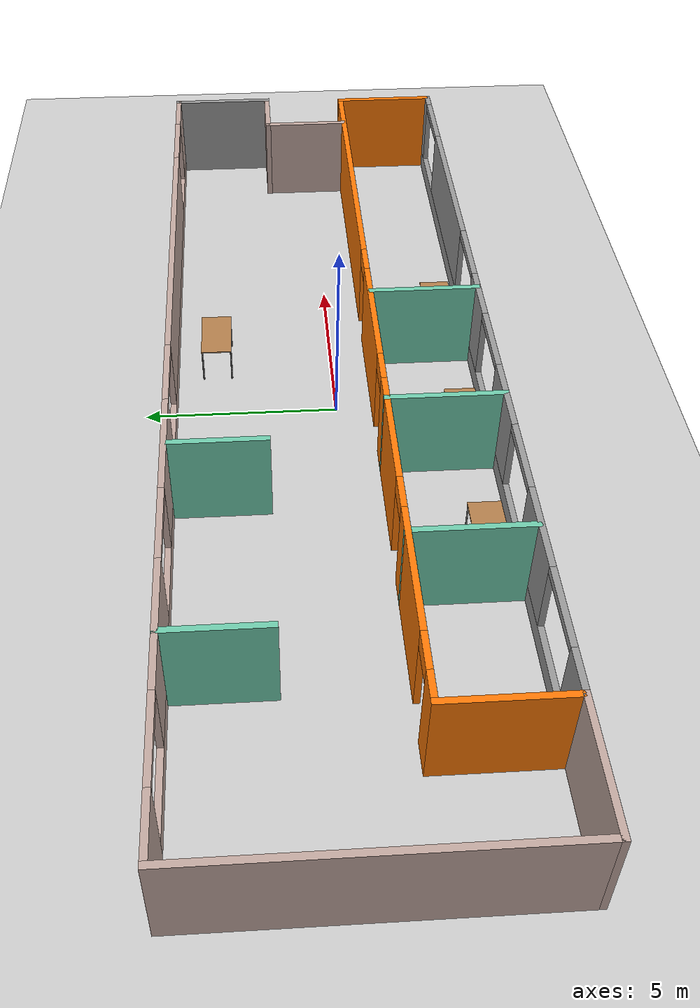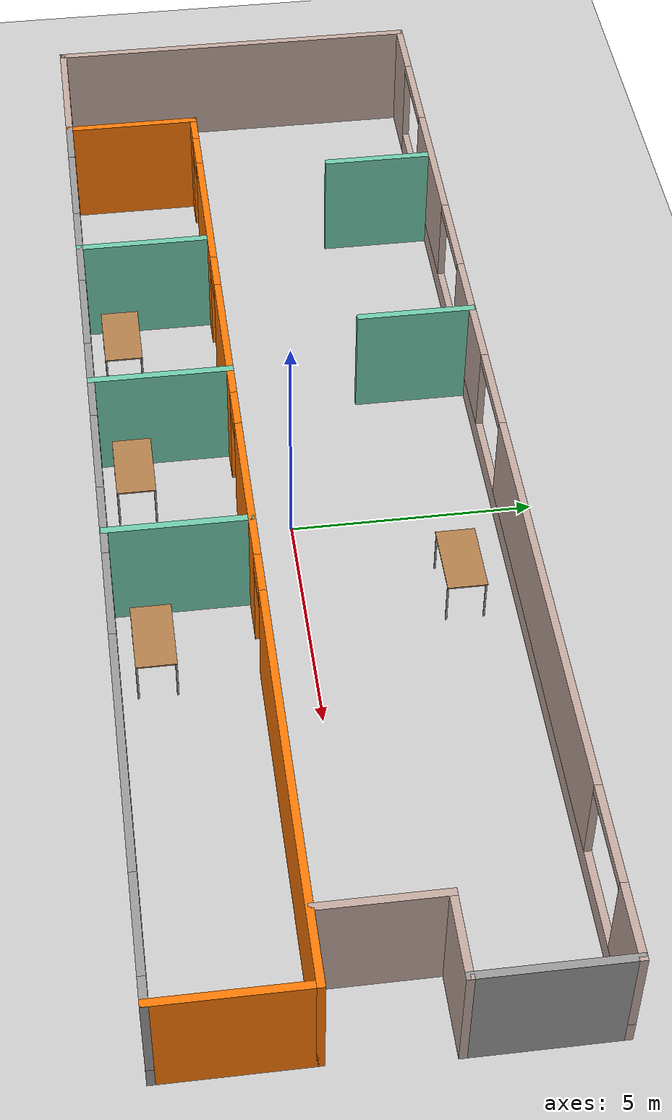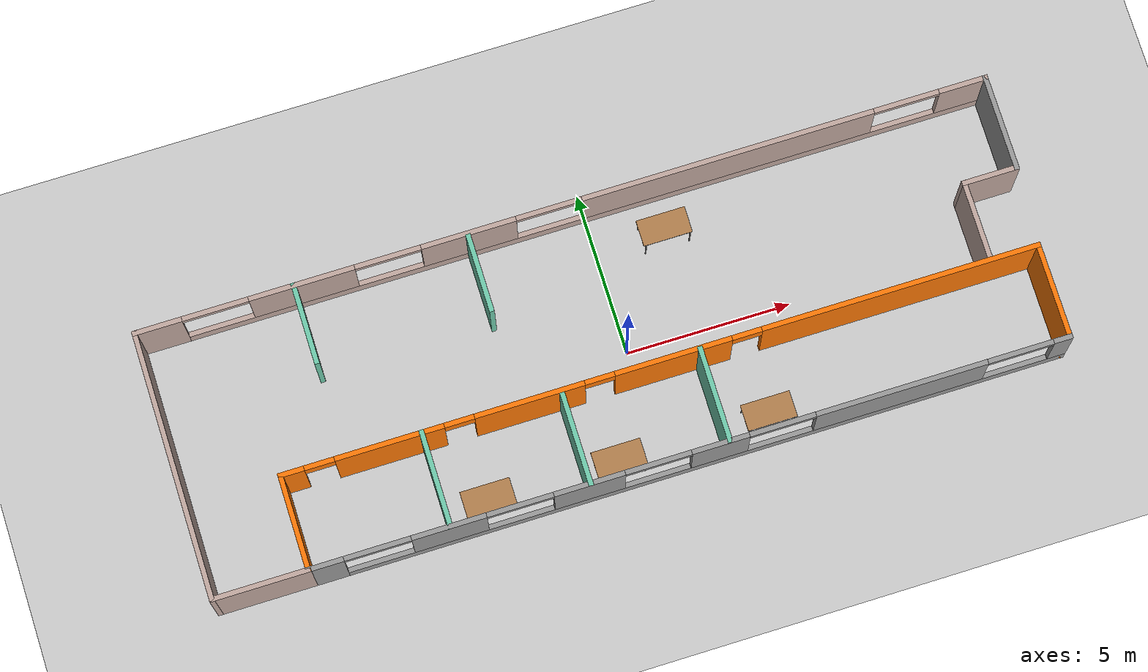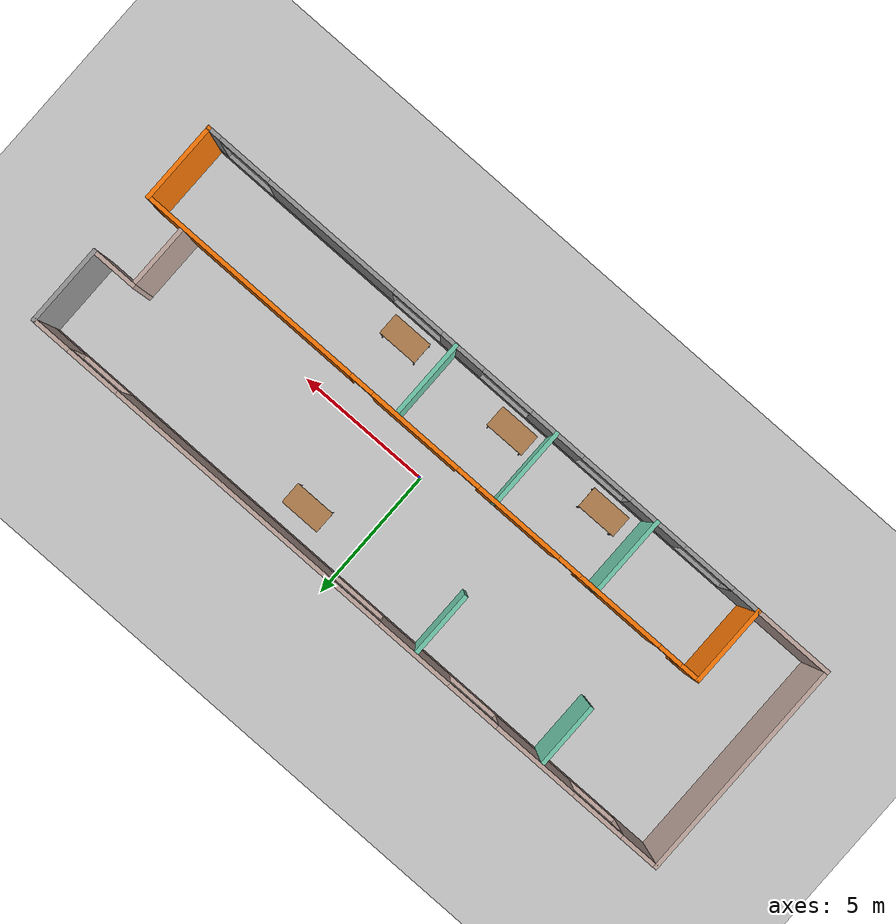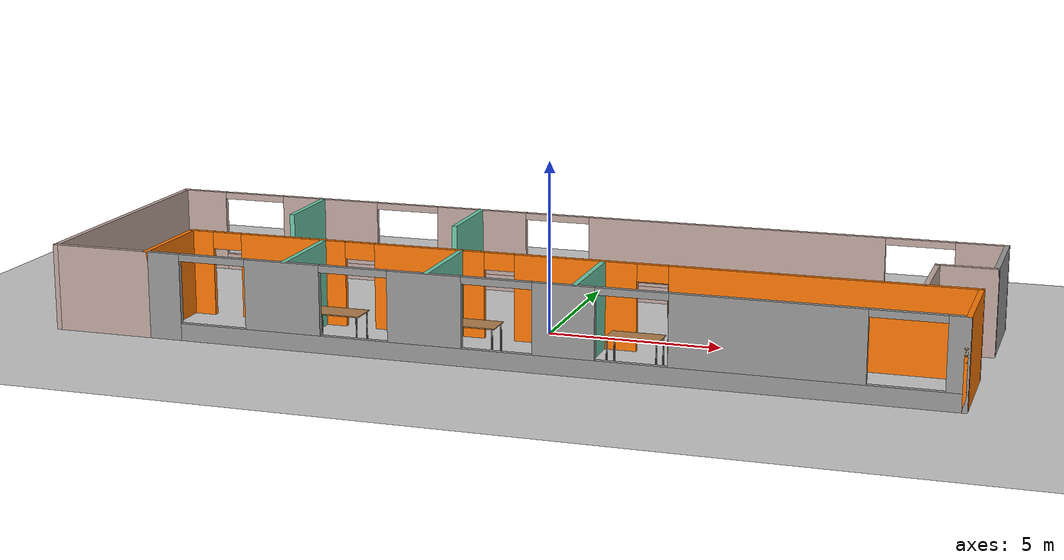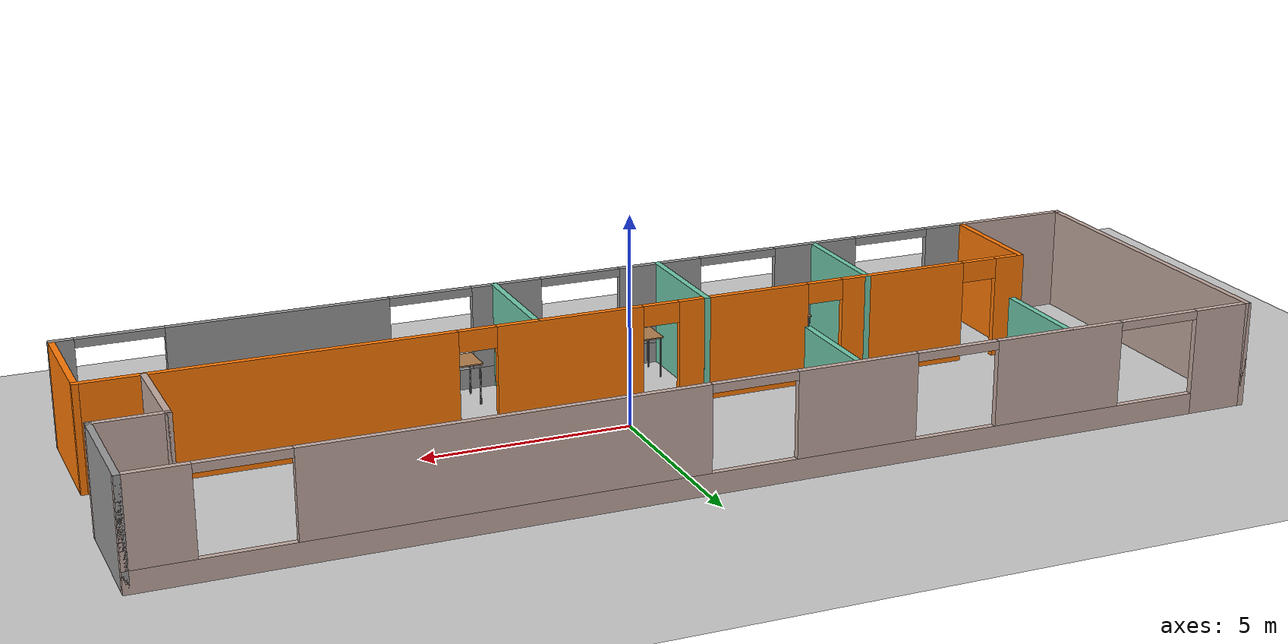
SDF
<sdf version="1.6">
 <world name="default">
  <light name="sun" type="directional">
   <pose>0 0 10 0 -0 0</pose>
   <diffuse>0.8 0.8 0.8 1</diffuse>
   <specular>0.2 0.2 0.2 1</specular>
   <attenuation>
    <range>1000</range>
    <constant>0.9</constant>
    <linear>0.01</linear>
    <quadratic>0.001</quadratic>
   </attenuation>
   <direction>-0.5 0.1 -0.9</direction>
  </light>
  <model name="ground_plane">
   <static>1</static>
   <link name="link">
    <collision name="collision">
     <geometry><plane><normal>0 0 1</normal><size>100 100</size></plane></geometry>
     <surface><friction><ode><mu>100</mu><mu2>50</mu2></ode></friction></surface>
    </collision>
    <visual name="visual">
     <cast_shadows>0</cast_shadows>
     <geometry><plane><normal>0 0 1</normal><size>100 100</size></plane></geometry>
     <material>
      <script><uri>file://media/materials/scripts/gazebo.material</uri><name>Gazebo/Grey</name></script>
     </material>
    </visual>
   </link>
  </model>
  <gravity>0 0 -9.8</gravity>
  <magnetic_field>6e-06 2.3e-05 -4.2e-05</magnetic_field>
  <atmosphere type="adiabatic"/>
  <physics name="default_physics" default="0" type="ode">
   <max_step_size>0.001</max_step_size>
   <real_time_factor>1</real_time_factor>
   <real_time_update_rate>1000</real_time_update_rate>
  </physics>
  <scene><ambient>0.4 0.4 0.4 1</ambient><background>0.7 0.7 0.7 1</background><shadows>1</shadows></scene>
  <spherical_coordinates>
   <surface_model>EARTH_WGS84</surface_model>
   <latitude_deg>0</latitude_deg>
   <longitude_deg>0</longitude_deg>
   <elevation>0</elevation>
   <heading_deg>0</heading_deg>
  </spherical_coordinates>
  <model name="twirtee_lab">
   <pose>-0.633304 0.212594 0 0 -0 0</pose>
   <link name="Wall_10">
    <collision name="Wall_10_Collision">
     <geometry><box><size>3 0.15 2.5</size></box></geometry>
     <pose>0 0 1.25 0 -0 0</pose>
    </collision>
    <visual name="Wall_10_Visual">
     <pose>0 0 1.25 0 -0 0</pose>
     <geometry><box><size>3 0.15 2.5</size></box></geometry>
     <material>
      <script><uri>file://media/materials/scripts/gazebo.material</uri><name>Gazebo/Grey</name></script>
      <ambient>0.996078 0.47451 0.0196078 1</ambient>
     </material>
     <meta><layer>0</layer></meta>
    </visual>
    <pose>12.775 -2.625 0 0 -0 1.5708</pose>
   </link>
   <link name="Wall_11">
    <pose>1.35 -1.2 0 0 -0 3.14159</pose>
    <visual name="Wall_11_Visual_0">
     <pose>-7.25852 0 1.25 0 -0 0</pose>
     <geometry><box><size>8.48295 0.15 2.5</size></box></geometry>
     <material>
      <script><uri>file://media/materials/scripts/gazebo.material</uri><name>Gazebo/Grey</name></script>
      <ambient>0.996078 0.47451 0.0196078 1</ambient>
     </material>
     <meta><layer>0</layer></meta>
    </visual>
    <collision name="Wall_11_Collision_0">
     <geometry><box><size>8.48295 0.15 2.5</size></box></geometry>
     <pose>-7.25852 0 1.25 0 -0 0</pose>
    </collision>
    <visual name="Wall_11_Visual_1">
     <pose>-0.345812 0 1.25 0 -0 0</pose>
     <geometry><box><size>3.54248 0.15 2.5</size></box></geometry>
     <material>
      <script><uri>file://media/materials/scripts/gazebo.material</uri><name>Gazebo/Grey</name></script>
      <ambient>0.996078 0.47451 0.0196078 1</ambient>
     </material>
     <meta><layer>0</layer></meta>
    </visual>
    <collision name="Wall_11_Collision_1">
     <geometry><box><size>3.54248 0.15 2.5</size></box></geometry>
     <pose>-0.345812 0 1.25 0 -0 0</pose>
    </collision>
    <visual name="Wall_11_Visual_2">
     <pose>3.98298 0 1.25 0 -0 0</pose>
     <geometry><box><size>3.3151 0.15 2.5</size></box></geometry>
     <material>
      <script><uri>file://media/materials/scripts/gazebo.material</uri><name>Gazebo/Grey</name></script>
      <ambient>0.996078 0.47451 0.0196078 1</ambient>
     </material>
     <meta><layer>0</layer></meta>
    </visual>
    <collision name="Wall_11_Collision_2">
     <geometry><box><size>3.3151 0.15 2.5</size></box></geometry>
     <pose>3.98298 0 1.25 0 -0 0</pose>
    </collision>
    <visual name="Wall_11_Visual_3">
     <pose>8.18059 0 1.25 0 -0 0</pose>
     <geometry><box><size>3.28012 0.15 2.5</size></box></geometry>
     <material>
      <script><uri>file://media/materials/scripts/gazebo.material</uri><name>Gazebo/Grey</name></script>
      <ambient>0.996078 0.47451 0.0196078 1</ambient>
     </material>
     <meta><layer>0</layer></meta>
    </visual>
    <collision name="Wall_11_Collision_3">
     <geometry><box><size>3.28012 0.15 2.5</size></box></geometry>
     <pose>8.18059 0 1.25 0 -0 0</pose>
    </collision>
    <visual name="Wall_11_Visual_4">
     <pose>11.1103 0 1.25 0 -0 0</pose>
     <geometry><box><size>0.779344 0.15 2.5</size></box></geometry>
     <material>
      <script><uri>file://media/materials/scripts/gazebo.material</uri><name>Gazebo/Grey</name></script>
      <ambient>0.996078 0.47451 0.0196078 1</ambient>
     </material>
     <meta><layer>0</layer></meta>
    </visual>
    <collision name="Wall_11_Collision_4">
     <geometry><box><size>0.779344 0.15 2.5</size></box></geometry>
     <pose>11.1103 0 1.25 0 -0 0</pose>
    </collision>
    <visual name="Wall_11_Visual_5">
     <pose>-2.56705 0 2.25 0 -0 0</pose>
     <geometry><box><size>0.9 0.15 0.5</size></box></geometry>
     <material>
      <script><uri>file://media/materials/scripts/gazebo.material</uri><name>Gazebo/Grey</name></script>
      <ambient>0.996078 0.47451 0.0196078 1</ambient>
     </material>
     <meta><layer>0</layer></meta>
    </visual>
    <collision name="Wall_11_Collision_5">
     <geometry><box><size>0.9 0.15 0.5</size></box></geometry>
     <pose>-2.56705 0 2.25 0 -0 0</pose>
    </collision>
    <visual name="Wall_11_Visual_6">
     <pose>1.87543 0 2.25 0 -0 0</pose>
     <geometry><box><size>0.9 0.15 0.5</size></box></geometry>
     <material>
      <script><uri>file://media/materials/scripts/gazebo.material</uri><name>Gazebo/Grey</name></script>
      <ambient>0.996078 0.47451 0.0196078 1</ambient>
     </material>
     <meta><layer>0</layer></meta>
    </visual>
    <collision name="Wall_11_Collision_6">
     <geometry><box><size>0.9 0.15 0.5</size></box></geometry>
     <pose>1.87543 0 2.25 0 -0 0</pose>
    </collision>
    <visual name="Wall_11_Visual_7">
     <pose>6.09053 0 2.25 0 -0 0</pose>
     <geometry><box><size>0.9 0.15 0.5</size></box></geometry>
     <material>
      <script><uri>file://media/materials/scripts/gazebo.material</uri><name>Gazebo/Grey</name></script>
      <ambient>0.996078 0.47451 0.0196078 1</ambient>
     </material>
     <meta><layer>0</layer></meta>
    </visual>
    <collision name="Wall_11_Collision_7">
     <geometry><box><size>0.9 0.15 0.5</size></box></geometry>
     <pose>6.09053 0 2.25 0 -0 0</pose>
    </collision>
    <visual name="Wall_11_Visual_8">
     <pose>10.2707 0 2.25 0 -0 0</pose>
     <geometry><box><size>0.9 0.15 0.5</size></box></geometry>
     <material>
      <script><uri>file://media/materials/scripts/gazebo.material</uri><name>Gazebo/Grey</name></script>
      <ambient>0.996078 0.47451 0.0196078 1</ambient>
     </material>
     <meta><layer>0</layer></meta>
    </visual>
    <collision name="Wall_11_Collision_8">
     <geometry><box><size>0.9 0.15 0.5</size></box></geometry>
     <pose>10.2707 0 2.25 0 -0 0</pose>
    </collision>
   </link>
   <link name="Wall_12">
    <collision name="Wall_12_Collision">
     <geometry><box><size>3 0.15 2.5</size></box></geometry>
     <pose>0 0 1.25 0 -0 0</pose>
    </collision>
    <visual name="Wall_12_Visual">
     <pose>0 0 1.25 0 -0 0</pose>
     <geometry><box><size>3 0.15 2.5</size></box></geometry>
     <material>
      <script><uri>file://media/materials/scripts/gazebo.material</uri><name>Gazebo/Grey</name></script>
      <ambient>0.996078 0.47451 0.0196078 1</ambient>
     </material>
     <meta><layer>0</layer></meta>
    </visual>
    <pose>-10.075 -2.625 0 0 -0 -1.5708</pose>
   </link>
   <link name="Wall_16">
    <collision name="Wall_16_Collision">
     <geometry><box><size>3 0.15 2.5</size></box></geometry>
     <pose>0 0 1.25 0 -0 0</pose>
    </collision>
    <visual name="Wall_16_Visual">
     <pose>0 0 1.25 0 -0 0</pose>
     <geometry><box><size>3 0.15 2.5</size></box></geometry>
     <material>
      <script><uri>file://media/materials/scripts/gazebo.material</uri><name>Gazebo/Grey</name></script>
      <ambient>0.435294 0.796078 0.67451 1</ambient>
     </material>
     <meta><layer>0</layer></meta>
    </visual>
    <pose>-5.85989 -2.62412 0 0 -0 -1.5708</pose>
   </link>
   <link name="Wall_19">
    <collision name="Wall_19_Collision">
     <geometry><box><size>3 0.15 2.5</size></box></geometry>
     <pose>0 0 1.25 0 -0 0</pose>
    </collision>
    <visual name="Wall_19_Visual">
     <pose>0 0 1.25 0 -0 0</pose>
     <geometry><box><size>3 0.15 2.5</size></box></geometry>
     <material>
      <script><uri>file://media/materials/scripts/gazebo.material</uri><name>Gazebo/Grey</name></script>
      <ambient>0.760784 0.662745 0.627451 1</ambient>
     </material>
     <meta><layer>0</layer></meta>
    </visual>
    <pose>-11.5 -4.05 0 0 -0 3.14159</pose>
   </link>
   <link name="Wall_20">
    <collision name="Wall_20_Collision">
     <geometry><box><size>8.25 0.15 2.5</size></box></geometry>
     <pose>0 0 1.25 0 -0 0</pose>
    </collision>
    <visual name="Wall_20_Visual">
     <pose>0 0 1.25 0 -0 0</pose>
     <geometry><box><size>8.25 0.15 2.5</size></box></geometry>
     <material>
      <script><uri>file://media/materials/scripts/gazebo.material</uri><name>Gazebo/Grey</name></script>
      <ambient>0.760784 0.662745 0.627451 1</ambient>
     </material>
     <meta><layer>0</layer></meta>
    </visual>
    <pose>-12.925 -0 0 0 -0 1.5708</pose>
   </link>
   <link name="Wall_21">
    <pose>0 4.05 0 0 -0 0</pose>
    <visual name="Wall_21_Visual_0">
     <pose>-12.2561 0 1.25 0 -0 0</pose>
     <geometry><box><size>1.48775 0.15 2.5</size></box></geometry>
     <material>
      <script><uri>file://media/materials/scripts/gazebo.material</uri><name>Gazebo/Grey</name></script>
      <ambient>0.760784 0.662745 0.627451 1</ambient>
     </material>
     <meta><layer>0</layer></meta>
    </visual>
    <collision name="Wall_21_Collision_0">
     <geometry><box><size>1.48775 0.15 2.5</size></box></geometry>
     <pose>-12.2561 0 1.25 0 -0 0</pose>
    </collision>
    <visual name="Wall_21_Visual_1">
     <pose>0.743874 0 0.25 0 -0 0</pose>
     <geometry><box><size>24.5123 0.15 0.5</size></box></geometry>
     <material>
      <script><uri>file://media/materials/scripts/gazebo.material</uri><name>Gazebo/Grey</name></script>
      <ambient>0.760784 0.662745 0.627451 1</ambient>
     </material>
     <meta><layer>0</layer></meta>
    </visual>
    <collision name="Wall_21_Collision_1">
     <geometry><box><size>24.5123 0.15 0.5</size></box></geometry>
     <pose>0.743874 0 0.25 0 -0 0</pose>
    </collision>
    <visual name="Wall_21_Visual_2">
     <pose>-7.91498 0 1.5 0 -0 0</pose>
     <geometry><box><size>3.19455 0.15 2</size></box></geometry>
     <material>
      <script><uri>file://media/materials/scripts/gazebo.material</uri><name>Gazebo/Grey</name></script>
      <ambient>0.760784 0.662745 0.627451 1</ambient>
     </material>
     <meta><layer>0</layer></meta>
    </visual>
    <collision name="Wall_21_Collision_2">
     <geometry><box><size>3.19455 0.15 2</size></box></geometry>
     <pose>-7.91498 0 1.5 0 -0 0</pose>
    </collision>
    <visual name="Wall_21_Visual_3">
     <pose>-2.87784 0 1.5 0 -0 0</pose>
     <geometry><box><size>2.87973 0.15 2</size></box></geometry>
     <material>
      <script><uri>file://media/materials/scripts/gazebo.material</uri><name>Gazebo/Grey</name></script>
      <ambient>0.760784 0.662745 0.627451 1</ambient>
     </material>
     <meta><layer>0</layer></meta>
    </visual>
    <collision name="Wall_21_Collision_3">
     <geometry><box><size>2.87973 0.15 2</size></box></geometry>
     <pose>-2.87784 0 1.5 0 -0 0</pose>
    </collision>
    <visual name="Wall_21_Visual_4">
     <pose>5.02767 0 1.5 0 -0 0</pose>
     <geometry><box><size>8.93129 0.15 2</size></box></geometry>
     <material>
      <script><uri>file://media/materials/scripts/gazebo.material</uri><name>Gazebo/Grey</name></script>
      <ambient>0.760784 0.662745 0.627451 1</ambient>
     </material>
     <meta><layer>0</layer></meta>
    </visual>
    <collision name="Wall_21_Collision_4">
     <geometry><box><size>8.93129 0.15 2</size></box></geometry>
     <pose>5.02767 0 1.5 0 -0 0</pose>
    </collision>
    <visual name="Wall_21_Visual_5">
     <pose>12.2467 0 1.5 0 -0 0</pose>
     <geometry><box><size>1.50669 0.15 2</size></box></geometry>
     <material>
      <script><uri>file://media/materials/scripts/gazebo.material</uri><name>Gazebo/Grey</name></script>
      <ambient>0.760784 0.662745 0.627451 1</ambient>
     </material>
     <meta><layer>0</layer></meta>
    </visual>
    <collision name="Wall_21_Collision_5">
     <geometry><box><size>1.50669 0.15 2</size></box></geometry>
     <pose>12.2467 0 1.5 0 -0 0</pose>
    </collision>
    <visual name="Wall_21_Visual_6">
     <pose>-10.5123 0 2.4 0 -0 0</pose>
     <geometry><box><size>2 0.15 0.2</size></box></geometry>
     <material>
      <script><uri>file://media/materials/scripts/gazebo.material</uri><name>Gazebo/Grey</name></script>
      <ambient>0.760784 0.662745 0.627451 1</ambient>
     </material>
     <meta><layer>0</layer></meta>
    </visual>
    <collision name="Wall_21_Collision_6">
     <geometry><box><size>2 0.15 0.2</size></box></geometry>
     <pose>-10.5123 0 2.4 0 -0 0</pose>
    </collision>
    <visual name="Wall_21_Visual_7">
     <pose>-5.3177 0 2.4 0 -0 0</pose>
     <geometry><box><size>2 0.15 0.2</size></box></geometry>
     <material>
      <script><uri>file://media/materials/scripts/gazebo.material</uri><name>Gazebo/Grey</name></script>
      <ambient>0.760784 0.662745 0.627451 1</ambient>
     </material>
     <meta><layer>0</layer></meta>
    </visual>
    <collision name="Wall_21_Collision_7">
     <geometry><box><size>2 0.15 0.2</size></box></geometry>
     <pose>-5.3177 0 2.4 0 -0 0</pose>
    </collision>
    <visual name="Wall_21_Visual_8">
     <pose>-0.437976 0 2.4 0 -0 0</pose>
     <geometry><box><size>2 0.15 0.2</size></box></geometry>
     <material>
      <script><uri>file://media/materials/scripts/gazebo.material</uri><name>Gazebo/Grey</name></script>
      <ambient>0.760784 0.662745 0.627451 1</ambient>
     </material>
     <meta><layer>0</layer></meta>
    </visual>
    <collision name="Wall_21_Collision_8">
     <geometry><box><size>2 0.15 0.2</size></box></geometry>
     <pose>-0.437976 0 2.4 0 -0 0</pose>
    </collision>
    <visual name="Wall_21_Visual_9">
     <pose>10.4933 0 2.4 0 -0 0</pose>
     <geometry><box><size>2 0.15 0.2</size></box></geometry>
     <material>
      <script><uri>file://media/materials/scripts/gazebo.material</uri><name>Gazebo/Grey</name></script>
      <ambient>0.760784 0.662745 0.627451 1</ambient>
     </material>
     <meta><layer>0</layer></meta>
    </visual>
    <collision name="Wall_21_Collision_9">
     <geometry><box><size>2 0.15 0.2</size></box></geometry>
     <pose>10.4933 0 2.4 0 -0 0</pose>
    </collision>
   </link>
   <link name="Wall_22">
    <collision name="Wall_22_Collision">
     <geometry><box><size>3 0.15 2.5</size></box></geometry>
     <pose>0 0 1.25 0 -0 0</pose>
    </collision>
    <visual name="Wall_22_Visual">
     <pose>0 0 1.25 0 -0 0</pose>
     <geometry><box><size>3 0.15 2.5</size></box></geometry>
     <material>
      <script><uri>file://media/materials/scripts/gazebo.material</uri><name>Gazebo/Grey</name></script>
      <ambient>1 1 1 1</ambient>
     </material>
     <meta><layer>0</layer></meta>
    </visual>
    <pose>12.925 2.625 0 0 -0 -1.5708</pose>
   </link>
   <link name="Wall_23">
    <collision name="Wall_23_Collision">
     <geometry><box><size>1.75 0.15 2.5</size></box></geometry>
     <pose>0 0 1.25 0 -0 0</pose>
    </collision>
    <visual name="Wall_23_Visual">
     <pose>0 0 1.25 0 -0 0</pose>
     <geometry><box><size>1.75 0.15 2.5</size></box></geometry>
     <material>
      <script><uri>file://media/materials/scripts/gazebo.material</uri><name>Gazebo/Grey</name></script>
      <ambient>0.760784 0.662745 0.627451 1</ambient>
     </material>
     <meta><layer>0</layer></meta>
    </visual>
    <pose>12.125 1.2 0 0 -0 3.14159</pose>
   </link>
   <link name="Wall_24">
    <collision name="Wall_24_Collision">
     <geometry><box><size>2.5 0.15 2.5</size></box></geometry>
     <pose>0 0 1.25 0 -0 0</pose>
    </collision>
    <visual name="Wall_24_Visual">
     <pose>0 0 1.25 0 -0 0</pose>
     <geometry><box><size>2.5 0.15 2.5</size></box></geometry>
     <material>
      <script><uri>file://media/materials/scripts/gazebo.material</uri><name>Gazebo/Grey</name></script>
      <ambient>0.760784 0.662745 0.627451 1</ambient>
     </material>
     <meta><layer>0</layer></meta>
    </visual>
    <pose>11.325 0.025 0 0 -0 -1.5708</pose>
   </link>
   <link name="Wall_26">
    <collision name="Wall_26_Collision">
     <geometry><box><size>3 0.15 2.5</size></box></geometry>
     <pose>0 0 1.25 0 -0 0</pose>
    </collision>
    <visual name="Wall_26_Visual">
     <pose>0 0 1.25 0 -0 0</pose>
     <geometry><box><size>3 0.15 2.5</size></box></geometry>
     <material>
      <script><uri>file://media/materials/scripts/gazebo.material</uri><name>Gazebo/Grey</name></script>
      <ambient>0.435294 0.796078 0.67451 1</ambient>
     </material>
     <meta><layer>0</layer></meta>
    </visual>
    <pose>-1.67977 -2.62412 0 0 -0 -1.5708</pose>
   </link>
   <link name="Wall_30">
    <collision name="Wall_30_Collision">
     <geometry><box><size>2.94928 0.15 2.5</size></box></geometry>
     <pose>0 0 1.25 0 -0 0</pose>
    </collision>
    <visual name="Wall_30_Visual">
     <pose>0 0 1.25 0 -0 0</pose>
     <geometry><box><size>2.94928 0.15 2.5</size></box></geometry>
     <material>
      <script><uri>file://media/materials/scripts/gazebo.material</uri><name>Gazebo/Grey</name></script>
      <ambient>0.435294 0.796078 0.67451 1</ambient>
     </material>
     <meta><layer>0</layer></meta>
    </visual>
    <pose>2.50035 -2.63331 0 0 -0 -1.5708</pose>
   </link>
   <link name="Wall_32">
    <collision name="Wall_32_Collision">
     <geometry><box><size>2.5 0.15 2.5</size></box></geometry>
     <pose>0 0 1.25 0 -0 0</pose>
    </collision>
    <visual name="Wall_32_Visual">
     <pose>0 0 1.25 0 -0 0</pose>
     <geometry><box><size>2.5 0.15 2.5</size></box></geometry>
     <material>
      <script><uri>file://media/materials/scripts/gazebo.material</uri><name>Gazebo/Grey</name></script>
      <ambient>0.435294 0.796078 0.67451 1</ambient>
     </material>
     <meta><layer>0</layer></meta>
    </visual>
    <pose>-8.15109 2.8729 0 0 -0 -1.5708</pose>
   </link>
   <link name="Wall_34">
    <collision name="Wall_34_Collision">
     <geometry><box><size>2.5 0.15 2.5</size></box></geometry>
     <pose>0 0 1.25 0 -0 0</pose>
    </collision>
    <visual name="Wall_34_Visual">
     <pose>0 0 1.25 0 -0 0</pose>
     <geometry><box><size>2.5 0.15 2.5</size></box></geometry>
     <material>
      <script><uri>file://media/materials/scripts/gazebo.material</uri><name>Gazebo/Grey</name></script>
      <ambient>0.435294 0.796078 0.67451 1</ambient>
     </material>
     <meta><layer>0</layer></meta>
    </visual>
    <pose>-2.90407 2.85541 0 0 -0 -1.5708</pose>
   </link>
   <link name="Wall_9">
    <pose>1.35 -4.05 0 0 -0 0</pose>
    <visual name="Wall_9_Visual_0">
     <pose>-10.9393 0 1.25 0 -0 0</pose>
     <geometry><box><size>1.12134 0.15 2.5</size></box></geometry>
     <material>
      <script><uri>file://media/materials/scripts/gazebo.material</uri><name>Gazebo/Grey</name></script>
      <ambient>1 1 1 1</ambient>
     </material>
     <meta><layer>0</layer></meta>
    </visual>
    <collision name="Wall_9_Collision_0">
     <geometry><box><size>1.12134 0.15 2.5</size></box></geometry>
     <pose>-10.9393 0 1.25 0 -0 0</pose>
    </collision>
    <visual name="Wall_9_Visual_1">
     <pose>0.560668 0 0.25 0 -0 0</pose>
     <geometry><box><size>21.8787 0.15 0.5</size></box></geometry>
     <material>
      <script><uri>file://media/materials/scripts/gazebo.material</uri><name>Gazebo/Grey</name></script>
      <ambient>1 1 1 1</ambient>
     </material>
     <meta><layer>0</layer></meta>
    </visual>
    <collision name="Wall_9_Collision_1">
     <geometry><box><size>21.8787 0.15 0.5</size></box></geometry>
     <pose>0.560668 0 0.25 0 -0 0</pose>
    </collision>
    <visual name="Wall_9_Visual_2">
     <pose>-7.25799 0 1.5 0 -0 0</pose>
     <geometry><box><size>2.24134 0.15 2</size></box></geometry>
     <material>
      <script><uri>file://media/materials/scripts/gazebo.material</uri><name>Gazebo/Grey</name></script>
      <ambient>1 1 1 1</ambient>
     </material>
     <meta><layer>0</layer></meta>
    </visual>
    <collision name="Wall_9_Collision_2">
     <geometry><box><size>2.24134 0.15 2</size></box></geometry>
     <pose>-7.25799 0 1.5 0 -0 0</pose>
    </collision>
    <visual name="Wall_9_Visual_3">
     <pose>-3.06912 0 1.5 0 -0 0</pose>
     <geometry><box><size>2.1364 0.15 2</size></box></geometry>
     <material>
      <script><uri>file://media/materials/scripts/gazebo.material</uri><name>Gazebo/Grey</name></script>
      <ambient>1 1 1 1</ambient>
     </material>
     <meta><layer>0</layer></meta>
    </visual>
    <collision name="Wall_9_Collision_3">
     <geometry><box><size>2.1364 0.15 2</size></box></geometry>
     <pose>-3.06912 0 1.5 0 -0 0</pose>
    </collision>
    <visual name="Wall_9_Visual_4">
     <pose>0.866141 0 1.5 0 -0 0</pose>
     <geometry><box><size>1.73413 0.15 2</size></box></geometry>
     <material>
      <script><uri>file://media/materials/scripts/gazebo.material</uri><name>Gazebo/Grey</name></script>
      <ambient>1 1 1 1</ambient>
     </material>
     <meta><layer>0</layer></meta>
    </visual>
    <collision name="Wall_9_Collision_4">
     <geometry><box><size>1.73413 0.15 2</size></box></geometry>
     <pose>0.866141 0 1.5 0 -0 0</pose>
    </collision>
    <visual name="Wall_9_Visual_5">
     <pose>6.33179 0 1.5 0 -0 0</pose>
     <geometry><box><size>5.19716 0.15 2</size></box></geometry>
     <material>
      <script><uri>file://media/materials/scripts/gazebo.material</uri><name>Gazebo/Grey</name></script>
      <ambient>1 1 1 1</ambient>
     </material>
     <meta><layer>0</layer></meta>
    </visual>
    <collision name="Wall_9_Collision_5">
     <geometry><box><size>5.19716 0.15 2</size></box></geometry>
     <pose>6.33179 0 1.5 0 -0 0</pose>
    </collision>
    <visual name="Wall_9_Visual_6">
     <pose>11.2152 0 1.5 0 -0 0</pose>
     <geometry><box><size>0.569634 0.15 2</size></box></geometry>
     <material>
      <script><uri>file://media/materials/scripts/gazebo.material</uri><name>Gazebo/Grey</name></script>
      <ambient>1 1 1 1</ambient>
     </material>
     <meta><layer>0</layer></meta>
    </visual>
    <collision name="Wall_9_Collision_6">
     <geometry><box><size>0.569634 0.15 2</size></box></geometry>
     <pose>11.2152 0 1.5 0 -0 0</pose>
    </collision>
    <visual name="Wall_9_Visual_7">
     <pose>-9.37866 0 2.4 0 -0 0</pose>
     <geometry><box><size>2 0.15 0.2</size></box></geometry>
     <material>
      <script><uri>file://media/materials/scripts/gazebo.material</uri><name>Gazebo/Grey</name></script>
      <ambient>1 1 1 1</ambient>
     </material>
     <meta><layer>0</layer></meta>
    </visual>
    <collision name="Wall_9_Collision_7">
     <geometry><box><size>2 0.15 0.2</size></box></geometry>
     <pose>-9.37866 0 2.4 0 -0 0</pose>
    </collision>
    <visual name="Wall_9_Visual_8">
     <pose>-5.13732 0 2.4 0 -0 0</pose>
     <geometry><box><size>2 0.15 0.2</size></box></geometry>
     <material>
      <script><uri>file://media/materials/scripts/gazebo.material</uri><name>Gazebo/Grey</name></script>
      <ambient>1 1 1 1</ambient>
     </material>
     <meta><layer>0</layer></meta>
    </visual>
    <collision name="Wall_9_Collision_8">
     <geometry><box><size>2 0.15 0.2</size></box></geometry>
     <pose>-5.13732 0 2.4 0 -0 0</pose>
    </collision>
    <visual name="Wall_9_Visual_9">
     <pose>-1.00092 0 2.4 0 -0 0</pose>
     <geometry><box><size>2 0.15 0.2</size></box></geometry>
     <material>
      <script><uri>file://media/materials/scripts/gazebo.material</uri><name>Gazebo/Grey</name></script>
      <ambient>1 1 1 1</ambient>
     </material>
     <meta><layer>0</layer></meta>
    </visual>
    <collision name="Wall_9_Collision_9">
     <geometry><box><size>2 0.15 0.2</size></box></geometry>
     <pose>-1.00092 0 2.4 0 -0 0</pose>
    </collision>
    <visual name="Wall_9_Visual_10">
     <pose>2.73321 0 2.4 0 -0 0</pose>
     <geometry><box><size>2 0.15 0.2</size></box></geometry>
     <material>
      <script><uri>file://media/materials/scripts/gazebo.material</uri><name>Gazebo/Grey</name></script>
      <ambient>1 1 1 1</ambient>
     </material>
     <meta><layer>0</layer></meta>
    </visual>
    <collision name="Wall_9_Collision_10">
     <geometry><box><size>2 0.15 0.2</size></box></geometry>
     <pose>2.73321 0 2.4 0 -0 0</pose>
    </collision>
    <visual name="Wall_9_Visual_11">
     <pose>9.93037 0 2.4 0 -0 0</pose>
     <geometry><box><size>2 0.15 0.2</size></box></geometry>
     <material>
      <script><uri>file://media/materials/scripts/gazebo.material</uri><name>Gazebo/Grey</name></script>
      <ambient>1 1 1 1</ambient>
     </material>
     <meta><layer>0</layer></meta>
    </visual>
    <collision name="Wall_9_Collision_11">
     <geometry><box><size>2 0.15 0.2</size></box></geometry>
     <pose>9.93037 0 2.4 0 -0 0</pose>
    </collision>
   </link>
   <static>1</static>
  </model>
  <model name="table">
   <static>1</static>
   <link name="link">
    <collision name="surface">
     <pose>0 0 1 0 -0 0</pose>
     <geometry><box><size>1.5 0.8 0.03</size></box></geometry>
     <surface><friction><ode><mu>0.6</mu><mu2>0.6</mu2></ode></friction></surface>
    </collision>
    <visual name="visual1">
     <pose>0 0 1 0 -0 0</pose>
     <geometry><box><size>1.5 0.8 0.03</size></box></geometry>
     <material>
      <script><uri>file://media/materials/scripts/gazebo.material</uri><name>Gazebo/Wood</name></script>
     </material>
    </visual>
    <collision name="front_left_leg">
     <pose>0.68 0.38 0.5 0 -0 0</pose>
     <geometry><cylinder><radius>0.02</radius><length>1</length></cylinder></geometry>
    </collision>
    <visual name="front_left_leg">
     <pose>0.68 0.38 0.5 0 -0 0</pose>
     <geometry><cylinder><radius>0.02</radius><length>1</length></cylinder></geometry>
     <material>
      <script><uri>file://media/materials/scripts/gazebo.material</uri><name>Gazebo/Grey</name></script>
     </material>
    </visual>
    <collision name="front_right_leg">
     <pose>0.68 -0.38 0.5 0 -0 0</pose>
     <geometry><cylinder><radius>0.02</radius><length>1</length></cylinder></geometry>
    </collision>
    <visual name="front_right_leg">
     <pose>0.68 -0.38 0.5 0 -0 0</pose>
     <geometry><cylinder><radius>0.02</radius><length>1</length></cylinder></geometry>
     <material>
      <script><uri>file://media/materials/scripts/gazebo.material</uri><name>Gazebo/Grey</name></script>
     </material>
    </visual>
    <collision name="back_right_leg">
     <pose>-0.68 -0.38 0.5 0 -0 0</pose>
     <geometry><cylinder><radius>0.02</radius><length>1</length></cylinder></geometry>
    </collision>
    <visual name="back_right_leg">
     <pose>-0.68 -0.38 0.5 0 -0 0</pose>
     <geometry><cylinder><radius>0.02</radius><length>1</length></cylinder></geometry>
     <material>
      <script><uri>file://media/materials/scripts/gazebo.material</uri><name>Gazebo/Grey</name></script>
     </material>
    </visual>
    <collision name="back_left_leg">
     <pose>-0.68 0.38 0.5 0 -0 0</pose>
     <geometry><cylinder><radius>0.02</radius><length>1</length></cylinder></geometry>
    </collision>
    <visual name="back_left_leg">
     <pose>-0.68 0.38 0.5 0 -0 0</pose>
     <geometry><cylinder><radius>0.02</radius><length>1</length></cylinder></geometry>
     <material>
      <script><uri>file://media/materials/scripts/gazebo.material</uri><name>Gazebo/Grey</name></script>
     </material>
    </visual>
   </link>
   <pose>3.34371 -3.06457 0 0 -0 0</pose>
  </model>
  <model name="table_0">
   <static>1</static>
   <link name="link">
    <collision name="surface">
     <pose>0 0 1 0 -0 0</pose>
     <geometry><box><size>1.5 0.8 0.03</size></box></geometry>
     <surface><friction><ode><mu>0.6</mu><mu2>0.6</mu2></ode></friction></surface>
    </collision>
    <visual name="visual1">
     <pose>0 0 1 0 -0 0</pose>
     <geometry><box><size>1.5 0.8 0.03</size></box></geometry>
     <material>
      <script><uri>file://media/materials/scripts/gazebo.material</uri><name>Gazebo/Wood</name></script>
     </material>
    </visual>
    <collision name="front_left_leg">
     <pose>0.68 0.38 0.5 0 -0 0</pose>
     <geometry><cylinder><radius>0.02</radius><length>1</length></cylinder></geometry>
    </collision>
    <visual name="front_left_leg">
     <pose>0.68 0.38 0.5 0 -0 0</pose>
     <geometry><cylinder><radius>0.02</radius><length>1</length></cylinder></geometry>
     <material>
      <script><uri>file://media/materials/scripts/gazebo.material</uri><name>Gazebo/Grey</name></script>
     </material>
    </visual>
    <collision name="front_right_leg">
     <pose>0.68 -0.38 0.5 0 -0 0</pose>
     <geometry><cylinder><radius>0.02</radius><length>1</length></cylinder></geometry>
    </collision>
    <visual name="front_right_leg">
     <pose>0.68 -0.38 0.5 0 -0 0</pose>
     <geometry><cylinder><radius>0.02</radius><length>1</length></cylinder></geometry>
     <material>
      <script><uri>file://media/materials/scripts/gazebo.material</uri><name>Gazebo/Grey</name></script>
     </material>
    </visual>
    <collision name="back_right_leg">
     <pose>-0.68 -0.38 0.5 0 -0 0</pose>
     <geometry><cylinder><radius>0.02</radius><length>1</length></cylinder></geometry>
    </collision>
    <visual name="back_right_leg">
     <pose>-0.68 -0.38 0.5 0 -0 0</pose>
     <geometry><cylinder><radius>0.02</radius><length>1</length></cylinder></geometry>
     <material>
      <script><uri>file://media/materials/scripts/gazebo.material</uri><name>Gazebo/Grey</name></script>
     </material>
    </visual>
    <collision name="back_left_leg">
     <pose>-0.68 0.38 0.5 0 -0 0</pose>
     <geometry><cylinder><radius>0.02</radius><length>1</length></cylinder></geometry>
    </collision>
    <visual name="back_left_leg">
     <pose>-0.68 0.38 0.5 0 -0 0</pose>
     <geometry><cylinder><radius>0.02</radius><length>1</length></cylinder></geometry>
     <material>
      <script><uri>file://media/materials/scripts/gazebo.material</uri><name>Gazebo/Grey</name></script>
     </material>
    </visual>
   </link>
   <pose>-1.22609 -3.1124 0 0 -0 0</pose>
  </model>
  <model name="table_1">
   <static>1</static>
   <link name="link">
    <collision name="surface">
     <pose>0 0 1 0 -0 0</pose>
     <geometry><box><size>1.5 0.8 0.03</size></box></geometry>
     <surface><friction><ode><mu>0.6</mu><mu2>0.6</mu2></ode></friction></surface>
    </collision>
    <visual name="visual1">
     <pose>0 0 1 0 -0 0</pose>
     <geometry><box><size>1.5 0.8 0.03</size></box></geometry>
     <material>
      <script><uri>file://media/materials/scripts/gazebo.material</uri><name>Gazebo/Wood</name></script>
     </material>
    </visual>
    <collision name="front_left_leg">
     <pose>0.68 0.38 0.5 0 -0 0</pose>
     <geometry><cylinder><radius>0.02</radius><length>1</length></cylinder></geometry>
    </collision>
    <visual name="front_left_leg">
     <pose>0.68 0.38 0.5 0 -0 0</pose>
     <geometry><cylinder><radius>0.02</radius><length>1</length></cylinder></geometry>
     <material>
      <script><uri>file://media/materials/scripts/gazebo.material</uri><name>Gazebo/Grey</name></script>
     </material>
    </visual>
    <collision name="front_right_leg">
     <pose>0.68 -0.38 0.5 0 -0 0</pose>
     <geometry><cylinder><radius>0.02</radius><length>1</length></cylinder></geometry>
    </collision>
    <visual name="front_right_leg">
     <pose>0.68 -0.38 0.5 0 -0 0</pose>
     <geometry><cylinder><radius>0.02</radius><length>1</length></cylinder></geometry>
     <material>
      <script><uri>file://media/materials/scripts/gazebo.material</uri><name>Gazebo/Grey</name></script>
     </material>
    </visual>
    <collision name="back_right_leg">
     <pose>-0.68 -0.38 0.5 0 -0 0</pose>
     <geometry><cylinder><radius>0.02</radius><length>1</length></cylinder></geometry>
    </collision>
    <visual name="back_right_leg">
     <pose>-0.68 -0.38 0.5 0 -0 0</pose>
     <geometry><cylinder><radius>0.02</radius><length>1</length></cylinder></geometry>
     <material>
      <script><uri>file://media/materials/scripts/gazebo.material</uri><name>Gazebo/Grey</name></script>
     </material>
    </visual>
    <collision name="back_left_leg">
     <pose>-0.68 0.38 0.5 0 -0 0</pose>
     <geometry><cylinder><radius>0.02</radius><length>1</length></cylinder></geometry>
    </collision>
    <visual name="back_left_leg">
     <pose>-0.68 0.38 0.5 0 -0 0</pose>
     <geometry><cylinder><radius>0.02</radius><length>1</length></cylinder></geometry>
     <material>
      <script><uri>file://media/materials/scripts/gazebo.material</uri><name>Gazebo/Grey</name></script>
     </material>
    </visual>
   </link>
   <pose>-5.18733 -3.09668 0 0 -0 0</pose>
  </model>
  <model name="table_2">
   <static>1</static>
   <link name="link">
    <collision name="surface">
     <pose>0 0 1 0 -0 0</pose>
     <geometry><box><size>1.5 0.8 0.03</size></box></geometry>
     <surface><friction><ode><mu>0.6</mu><mu2>0.6</mu2></ode></friction></surface>
    </collision>
    <visual name="visual1">
     <pose>0 0 1 0 -0 0</pose>
     <geometry><box><size>1.5 0.8 0.03</size></box></geometry>
     <material>
      <script><uri>file://media/materials/scripts/gazebo.material</uri><name>Gazebo/Wood</name></script>
     </material>
    </visual>
    <collision name="front_left_leg">
     <pose>0.68 0.38 0.5 0 -0 0</pose>
     <geometry><cylinder><radius>0.02</radius><length>1</length></cylinder></geometry>
    </collision>
    <visual name="front_left_leg">
     <pose>0.68 0.38 0.5 0 -0 0</pose>
     <geometry><cylinder><radius>0.02</radius><length>1</length></cylinder></geometry>
     <material>
      <script><uri>file://media/materials/scripts/gazebo.material</uri><name>Gazebo/Grey</name></script>
     </material>
    </visual>
    <collision name="front_right_leg">
     <pose>0.68 -0.38 0.5 0 -0 0</pose>
     <geometry><cylinder><radius>0.02</radius><length>1</length></cylinder></geometry>
    </collision>
    <visual name="front_right_leg">
     <pose>0.68 -0.38 0.5 0 -0 0</pose>
     <geometry><cylinder><radius>0.02</radius><length>1</length></cylinder></geometry>
     <material>
      <script><uri>file://media/materials/scripts/gazebo.material</uri><name>Gazebo/Grey</name></script>
     </material>
    </visual>
    <collision name="back_right_leg">
     <pose>-0.68 -0.38 0.5 0 -0 0</pose>
     <geometry><cylinder><radius>0.02</radius><length>1</length></cylinder></geometry>
    </collision>
    <visual name="back_right_leg">
     <pose>-0.68 -0.38 0.5 0 -0 0</pose>
     <geometry><cylinder><radius>0.02</radius><length>1</length></cylinder></geometry>
     <material>
      <script><uri>file://media/materials/scripts/gazebo.material</uri><name>Gazebo/Grey</name></script>
     </material>
    </visual>
    <collision name="back_left_leg">
     <pose>-0.68 0.38 0.5 0 -0 0</pose>
     <geometry><cylinder><radius>0.02</radius><length>1</length></cylinder></geometry>
    </collision>
    <visual name="back_left_leg">
     <pose>-0.68 0.38 0.5 0 -0 0</pose>
     <geometry><cylinder><radius>0.02</radius><length>1</length></cylinder></geometry>
     <material>
      <script><uri>file://media/materials/scripts/gazebo.material</uri><name>Gazebo/Grey</name></script>
     </material>
    </visual>
   </link>
   <pose>2.10637 3.12812 0 0 -0 0</pose>
  </model>
 </world>
</sdf>
